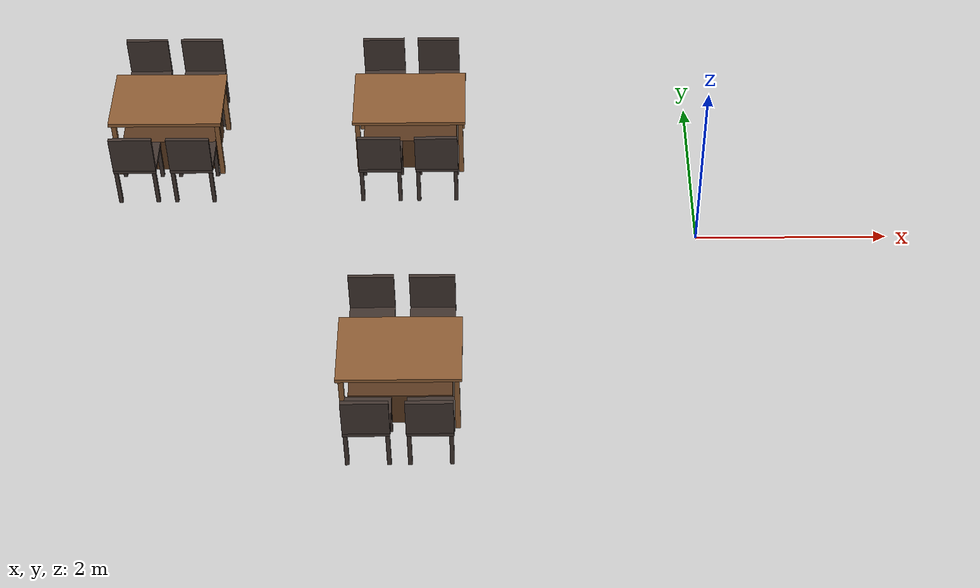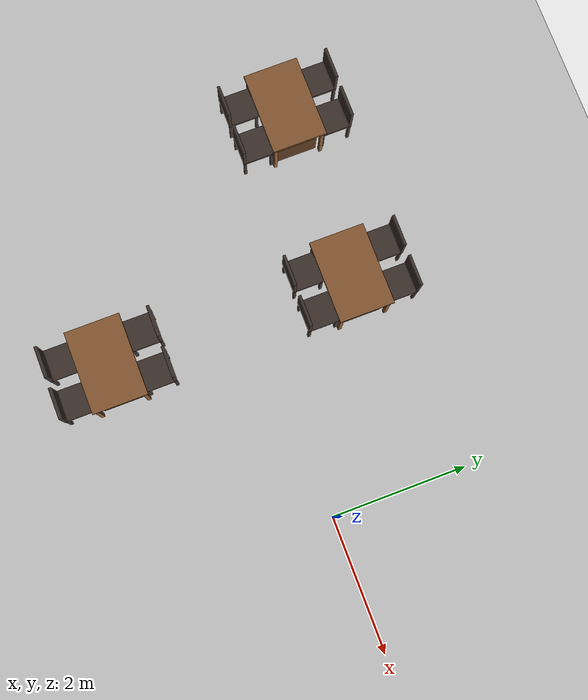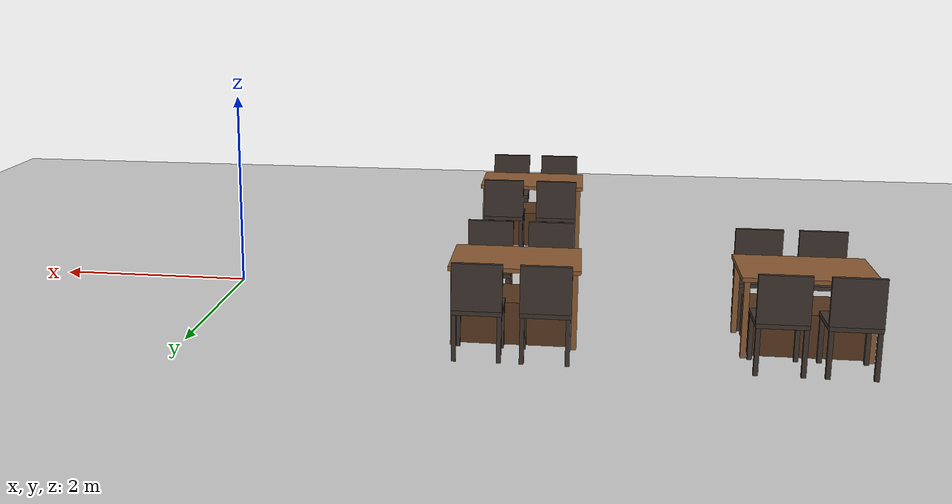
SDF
<sdf version="1.6">
 <world name="restaurant">
  <model name="ground_plane">
   <static>1</static>
   <link name="link">
    <collision name="collision">
     <geometry><plane><normal>0 0 1</normal><size>100 100</size></plane></geometry>
     <surface><friction><ode><mu>100</mu><mu2>50</mu2></ode></friction></surface>
    </collision>
    <visual name="visual">
     <cast_shadows>0</cast_shadows>
     <geometry><plane><normal>0 0 1</normal><size>100 100</size></plane></geometry>
     <material>
      <script><uri>file://media/materials/scripts/gazebo.material</uri><name>Gazebo/Grey</name></script>
     </material>
    </visual>
   </link>
  </model>
  <model name="table_1">
   <static>true</static>
   <pose>-5.6360 1.4091 0 0 0 0</pose>
   <link name="link">
    <collision name="base_collision">
     <pose>0.0000 0.0000 0.2000 0 0 0</pose>
     <geometry><box><size>1.0000 0.6000 0.4000</size></box></geometry>
    </collision>
    <visual name="base_visual">
     <pose>0.0000 0.0000 0.2000 0 0 0</pose>
     <geometry><box><size>1.0000 0.6000 0.4000</size></box></geometry>
     <material>
      <ambient>0.35 0.22 0.12 1</ambient>
      <diffuse>0.35 0.22 0.12 1</diffuse>
      <specular>0.05 0.05 0.05 1</specular>
     </material>
    </visual>
    <collision name="top_collision">
     <pose>0.0000 0.0000 0.7300 0 0 0</pose>
     <geometry><box><size>1.2000 0.8000 0.0400</size></box></geometry>
    </collision>
    <visual name="top_visual">
     <pose>0.0000 0.0000 0.7300 0 0 0</pose>
     <geometry><box><size>1.2000 0.8000 0.0400</size></box></geometry>
     <material>
      <ambient>0.55 0.36 0.2 1</ambient>
      <diffuse>0.55 0.36 0.2 1</diffuse>
      <specular>0.05 0.05 0.05 1</specular>
     </material>
    </visual>
    <collision name="leg0_collision">
     <pose>0.5500 0.3500 0.3550 0 0 0</pose>
     <geometry><box><size>0.0500 0.0500 0.7100</size></box></geometry>
    </collision>
    <visual name="leg0_visual">
     <pose>0.5500 0.3500 0.3550 0 0 0</pose>
     <geometry><box><size>0.0500 0.0500 0.7100</size></box></geometry>
     <material>
      <ambient>0.55 0.36 0.2 1</ambient>
      <diffuse>0.55 0.36 0.2 1</diffuse>
      <specular>0.05 0.05 0.05 1</specular>
     </material>
    </visual>
    <collision name="leg1_collision">
     <pose>0.5500 -0.3500 0.3550 0 0 0</pose>
     <geometry><box><size>0.0500 0.0500 0.7100</size></box></geometry>
    </collision>
    <visual name="leg1_visual">
     <pose>0.5500 -0.3500 0.3550 0 0 0</pose>
     <geometry><box><size>0.0500 0.0500 0.7100</size></box></geometry>
     <material>
      <ambient>0.55 0.36 0.2 1</ambient>
      <diffuse>0.55 0.36 0.2 1</diffuse>
      <specular>0.05 0.05 0.05 1</specular>
     </material>
    </visual>
    <collision name="leg2_collision">
     <pose>-0.5500 0.3500 0.3550 0 0 0</pose>
     <geometry><box><size>0.0500 0.0500 0.7100</size></box></geometry>
    </collision>
    <visual name="leg2_visual">
     <pose>-0.5500 0.3500 0.3550 0 0 0</pose>
     <geometry><box><size>0.0500 0.0500 0.7100</size></box></geometry>
     <material>
      <ambient>0.55 0.36 0.2 1</ambient>
      <diffuse>0.55 0.36 0.2 1</diffuse>
      <specular>0.05 0.05 0.05 1</specular>
     </material>
    </visual>
    <collision name="leg3_collision">
     <pose>-0.5500 -0.3500 0.3550 0 0 0</pose>
     <geometry><box><size>0.0500 0.0500 0.7100</size></box></geometry>
    </collision>
    <visual name="leg3_visual">
     <pose>-0.5500 -0.3500 0.3550 0 0 0</pose>
     <geometry><box><size>0.0500 0.0500 0.7100</size></box></geometry>
     <material>
      <ambient>0.55 0.36 0.2 1</ambient>
      <diffuse>0.55 0.36 0.2 1</diffuse>
      <specular>0.05 0.05 0.05 1</specular>
     </material>
    </visual>
    <collision name="chair0_seat_collision">
     <pose>-0.3000 0.6000 0.4500 0 0 0</pose>
     <geometry><box><size>0.4500 0.4500 0.0400</size></box></geometry>
    </collision>
    <visual name="chair0_seat_visual">
     <pose>-0.3000 0.6000 0.4500 0 0 0</pose>
     <geometry><box><size>0.4500 0.4500 0.0400</size></box></geometry>
     <material>
      <ambient>0.25 0.2 0.18 1</ambient>
      <diffuse>0.25 0.2 0.18 1</diffuse>
      <specular>0.05 0.05 0.05 1</specular>
     </material>
    </visual>
    <collision name="chair0_leg0_collision">
     <pose>-0.1000 0.8000 0.2150 0 0 0</pose>
     <geometry><box><size>0.0400 0.0400 0.4300</size></box></geometry>
    </collision>
    <visual name="chair0_leg0_visual">
     <pose>-0.1000 0.8000 0.2150 0 0 0</pose>
     <geometry><box><size>0.0400 0.0400 0.4300</size></box></geometry>
     <material>
      <ambient>0.25 0.2 0.18 1</ambient>
      <diffuse>0.25 0.2 0.18 1</diffuse>
      <specular>0.05 0.05 0.05 1</specular>
     </material>
    </visual>
    <collision name="chair0_leg1_collision">
     <pose>-0.1000 0.4000 0.2150 0 0 0</pose>
     <geometry><box><size>0.0400 0.0400 0.4300</size></box></geometry>
    </collision>
    <visual name="chair0_leg1_visual">
     <pose>-0.1000 0.4000 0.2150 0 0 0</pose>
     <geometry><box><size>0.0400 0.0400 0.4300</size></box></geometry>
     <material>
      <ambient>0.25 0.2 0.18 1</ambient>
      <diffuse>0.25 0.2 0.18 1</diffuse>
      <specular>0.05 0.05 0.05 1</specular>
     </material>
    </visual>
    <collision name="chair0_leg2_collision">
     <pose>-0.5000 0.8000 0.2150 0 0 0</pose>
     <geometry><box><size>0.0400 0.0400 0.4300</size></box></geometry>
    </collision>
    <visual name="chair0_leg2_visual">
     <pose>-0.5000 0.8000 0.2150 0 0 0</pose>
     <geometry><box><size>0.0400 0.0400 0.4300</size></box></geometry>
     <material>
      <ambient>0.25 0.2 0.18 1</ambient>
      <diffuse>0.25 0.2 0.18 1</diffuse>
      <specular>0.05 0.05 0.05 1</specular>
     </material>
    </visual>
    <collision name="chair0_leg3_collision">
     <pose>-0.5000 0.4000 0.2150 0 0 0</pose>
     <geometry><box><size>0.0400 0.0400 0.4300</size></box></geometry>
    </collision>
    <visual name="chair0_leg3_visual">
     <pose>-0.5000 0.4000 0.2150 0 0 0</pose>
     <geometry><box><size>0.0400 0.0400 0.4300</size></box></geometry>
     <material>
      <ambient>0.25 0.2 0.18 1</ambient>
      <diffuse>0.25 0.2 0.18 1</diffuse>
      <specular>0.05 0.05 0.05 1</specular>
     </material>
    </visual>
    <collision name="chair0_back_collision">
     <pose>-0.3000 0.8050 0.6850 0 0 0</pose>
     <geometry><box><size>0.4500 0.0400 0.4300</size></box></geometry>
    </collision>
    <visual name="chair0_back_visual">
     <pose>-0.3000 0.8050 0.6850 0 0 0</pose>
     <geometry><box><size>0.4500 0.0400 0.4300</size></box></geometry>
     <material>
      <ambient>0.25 0.2 0.18 1</ambient>
      <diffuse>0.25 0.2 0.18 1</diffuse>
      <specular>0.05 0.05 0.05 1</specular>
     </material>
    </visual>
    <collision name="chair1_seat_collision">
     <pose>-0.3000 -0.6000 0.4500 0 0 0</pose>
     <geometry><box><size>0.4500 0.4500 0.0400</size></box></geometry>
    </collision>
    <visual name="chair1_seat_visual">
     <pose>-0.3000 -0.6000 0.4500 0 0 0</pose>
     <geometry><box><size>0.4500 0.4500 0.0400</size></box></geometry>
     <material>
      <ambient>0.25 0.2 0.18 1</ambient>
      <diffuse>0.25 0.2 0.18 1</diffuse>
      <specular>0.05 0.05 0.05 1</specular>
     </material>
    </visual>
    <collision name="chair1_leg0_collision">
     <pose>-0.1000 -0.4000 0.2150 0 0 0</pose>
     <geometry><box><size>0.0400 0.0400 0.4300</size></box></geometry>
    </collision>
    <visual name="chair1_leg0_visual">
     <pose>-0.1000 -0.4000 0.2150 0 0 0</pose>
     <geometry><box><size>0.0400 0.0400 0.4300</size></box></geometry>
     <material>
      <ambient>0.25 0.2 0.18 1</ambient>
      <diffuse>0.25 0.2 0.18 1</diffuse>
      <specular>0.05 0.05 0.05 1</specular>
     </material>
    </visual>
    <collision name="chair1_leg1_collision">
     <pose>-0.1000 -0.8000 0.2150 0 0 0</pose>
     <geometry><box><size>0.0400 0.0400 0.4300</size></box></geometry>
    </collision>
    <visual name="chair1_leg1_visual">
     <pose>-0.1000 -0.8000 0.2150 0 0 0</pose>
     <geometry><box><size>0.0400 0.0400 0.4300</size></box></geometry>
     <material>
      <ambient>0.25 0.2 0.18 1</ambient>
      <diffuse>0.25 0.2 0.18 1</diffuse>
      <specular>0.05 0.05 0.05 1</specular>
     </material>
    </visual>
    <collision name="chair1_leg2_collision">
     <pose>-0.5000 -0.4000 0.2150 0 0 0</pose>
     <geometry><box><size>0.0400 0.0400 0.4300</size></box></geometry>
    </collision>
    <visual name="chair1_leg2_visual">
     <pose>-0.5000 -0.4000 0.2150 0 0 0</pose>
     <geometry><box><size>0.0400 0.0400 0.4300</size></box></geometry>
     <material>
      <ambient>0.25 0.2 0.18 1</ambient>
      <diffuse>0.25 0.2 0.18 1</diffuse>
      <specular>0.05 0.05 0.05 1</specular>
     </material>
    </visual>
    <collision name="chair1_leg3_collision">
     <pose>-0.5000 -0.8000 0.2150 0 0 0</pose>
     <geometry><box><size>0.0400 0.0400 0.4300</size></box></geometry>
    </collision>
    <visual name="chair1_leg3_visual">
     <pose>-0.5000 -0.8000 0.2150 0 0 0</pose>
     <geometry><box><size>0.0400 0.0400 0.4300</size></box></geometry>
     <material>
      <ambient>0.25 0.2 0.18 1</ambient>
      <diffuse>0.25 0.2 0.18 1</diffuse>
      <specular>0.05 0.05 0.05 1</specular>
     </material>
    </visual>
    <collision name="chair1_back_collision">
     <pose>-0.3000 -0.8050 0.6850 0 0 0</pose>
     <geometry><box><size>0.4500 0.0400 0.4300</size></box></geometry>
    </collision>
    <visual name="chair1_back_visual">
     <pose>-0.3000 -0.8050 0.6850 0 0 0</pose>
     <geometry><box><size>0.4500 0.0400 0.4300</size></box></geometry>
     <material>
      <ambient>0.25 0.2 0.18 1</ambient>
      <diffuse>0.25 0.2 0.18 1</diffuse>
      <specular>0.05 0.05 0.05 1</specular>
     </material>
    </visual>
    <collision name="chair2_seat_collision">
     <pose>0.3000 0.6000 0.4500 0 0 0</pose>
     <geometry><box><size>0.4500 0.4500 0.0400</size></box></geometry>
    </collision>
    <visual name="chair2_seat_visual">
     <pose>0.3000 0.6000 0.4500 0 0 0</pose>
     <geometry><box><size>0.4500 0.4500 0.0400</size></box></geometry>
     <material>
      <ambient>0.25 0.2 0.18 1</ambient>
      <diffuse>0.25 0.2 0.18 1</diffuse>
      <specular>0.05 0.05 0.05 1</specular>
     </material>
    </visual>
    <collision name="chair2_leg0_collision">
     <pose>0.5000 0.8000 0.2150 0 0 0</pose>
     <geometry><box><size>0.0400 0.0400 0.4300</size></box></geometry>
    </collision>
    <visual name="chair2_leg0_visual">
     <pose>0.5000 0.8000 0.2150 0 0 0</pose>
     <geometry><box><size>0.0400 0.0400 0.4300</size></box></geometry>
     <material>
      <ambient>0.25 0.2 0.18 1</ambient>
      <diffuse>0.25 0.2 0.18 1</diffuse>
      <specular>0.05 0.05 0.05 1</specular>
     </material>
    </visual>
    <collision name="chair2_leg1_collision">
     <pose>0.5000 0.4000 0.2150 0 0 0</pose>
     <geometry><box><size>0.0400 0.0400 0.4300</size></box></geometry>
    </collision>
    <visual name="chair2_leg1_visual">
     <pose>0.5000 0.4000 0.2150 0 0 0</pose>
     <geometry><box><size>0.0400 0.0400 0.4300</size></box></geometry>
     <material>
      <ambient>0.25 0.2 0.18 1</ambient>
      <diffuse>0.25 0.2 0.18 1</diffuse>
      <specular>0.05 0.05 0.05 1</specular>
     </material>
    </visual>
    <collision name="chair2_leg2_collision">
     <pose>0.1000 0.8000 0.2150 0 0 0</pose>
     <geometry><box><size>0.0400 0.0400 0.4300</size></box></geometry>
    </collision>
    <visual name="chair2_leg2_visual">
     <pose>0.1000 0.8000 0.2150 0 0 0</pose>
     <geometry><box><size>0.0400 0.0400 0.4300</size></box></geometry>
     <material>
      <ambient>0.25 0.2 0.18 1</ambient>
      <diffuse>0.25 0.2 0.18 1</diffuse>
      <specular>0.05 0.05 0.05 1</specular>
     </material>
    </visual>
    <collision name="chair2_leg3_collision">
     <pose>0.1000 0.4000 0.2150 0 0 0</pose>
     <geometry><box><size>0.0400 0.0400 0.4300</size></box></geometry>
    </collision>
    <visual name="chair2_leg3_visual">
     <pose>0.1000 0.4000 0.2150 0 0 0</pose>
     <geometry><box><size>0.0400 0.0400 0.4300</size></box></geometry>
     <material>
      <ambient>0.25 0.2 0.18 1</ambient>
      <diffuse>0.25 0.2 0.18 1</diffuse>
      <specular>0.05 0.05 0.05 1</specular>
     </material>
    </visual>
    <collision name="chair2_back_collision">
     <pose>0.3000 0.8050 0.6850 0 0 0</pose>
     <geometry><box><size>0.4500 0.0400 0.4300</size></box></geometry>
    </collision>
    <visual name="chair2_back_visual">
     <pose>0.3000 0.8050 0.6850 0 0 0</pose>
     <geometry><box><size>0.4500 0.0400 0.4300</size></box></geometry>
     <material>
      <ambient>0.25 0.2 0.18 1</ambient>
      <diffuse>0.25 0.2 0.18 1</diffuse>
      <specular>0.05 0.05 0.05 1</specular>
     </material>
    </visual>
    <collision name="chair3_seat_collision">
     <pose>0.3000 -0.6000 0.4500 0 0 0</pose>
     <geometry><box><size>0.4500 0.4500 0.0400</size></box></geometry>
    </collision>
    <visual name="chair3_seat_visual">
     <pose>0.3000 -0.6000 0.4500 0 0 0</pose>
     <geometry><box><size>0.4500 0.4500 0.0400</size></box></geometry>
     <material>
      <ambient>0.25 0.2 0.18 1</ambient>
      <diffuse>0.25 0.2 0.18 1</diffuse>
      <specular>0.05 0.05 0.05 1</specular>
     </material>
    </visual>
    <collision name="chair3_leg0_collision">
     <pose>0.5000 -0.4000 0.2150 0 0 0</pose>
     <geometry><box><size>0.0400 0.0400 0.4300</size></box></geometry>
    </collision>
    <visual name="chair3_leg0_visual">
     <pose>0.5000 -0.4000 0.2150 0 0 0</pose>
     <geometry><box><size>0.0400 0.0400 0.4300</size></box></geometry>
     <material>
      <ambient>0.25 0.2 0.18 1</ambient>
      <diffuse>0.25 0.2 0.18 1</diffuse>
      <specular>0.05 0.05 0.05 1</specular>
     </material>
    </visual>
    <collision name="chair3_leg1_collision">
     <pose>0.5000 -0.8000 0.2150 0 0 0</pose>
     <geometry><box><size>0.0400 0.0400 0.4300</size></box></geometry>
    </collision>
    <visual name="chair3_leg1_visual">
     <pose>0.5000 -0.8000 0.2150 0 0 0</pose>
     <geometry><box><size>0.0400 0.0400 0.4300</size></box></geometry>
     <material>
      <ambient>0.25 0.2 0.18 1</ambient>
      <diffuse>0.25 0.2 0.18 1</diffuse>
      <specular>0.05 0.05 0.05 1</specular>
     </material>
    </visual>
    <collision name="chair3_leg2_collision">
     <pose>0.1000 -0.4000 0.2150 0 0 0</pose>
     <geometry><box><size>0.0400 0.0400 0.4300</size></box></geometry>
    </collision>
    <visual name="chair3_leg2_visual">
     <pose>0.1000 -0.4000 0.2150 0 0 0</pose>
     <geometry><box><size>0.0400 0.0400 0.4300</size></box></geometry>
     <material>
      <ambient>0.25 0.2 0.18 1</ambient>
      <diffuse>0.25 0.2 0.18 1</diffuse>
      <specular>0.05 0.05 0.05 1</specular>
     </material>
    </visual>
    <collision name="chair3_leg3_collision">
     <pose>0.1000 -0.8000 0.2150 0 0 0</pose>
     <geometry><box><size>0.0400 0.0400 0.4300</size></box></geometry>
    </collision>
    <visual name="chair3_leg3_visual">
     <pose>0.1000 -0.8000 0.2150 0 0 0</pose>
     <geometry><box><size>0.0400 0.0400 0.4300</size></box></geometry>
     <material>
      <ambient>0.25 0.2 0.18 1</ambient>
      <diffuse>0.25 0.2 0.18 1</diffuse>
      <specular>0.05 0.05 0.05 1</specular>
     </material>
    </visual>
    <collision name="chair3_back_collision">
     <pose>0.3000 -0.8050 0.6850 0 0 0</pose>
     <geometry><box><size>0.4500 0.0400 0.4300</size></box></geometry>
    </collision>
    <visual name="chair3_back_visual">
     <pose>0.3000 -0.8050 0.6850 0 0 0</pose>
     <geometry><box><size>0.4500 0.0400 0.4300</size></box></geometry>
     <material>
      <ambient>0.25 0.2 0.18 1</ambient>
      <diffuse>0.25 0.2 0.18 1</diffuse>
      <specular>0.05 0.05 0.05 1</specular>
     </material>
    </visual>
   </link>
  </model>
  <model name="table_2">
   <static>true</static>
   <pose>-3.0360 1.4091 0 0 0 0</pose>
   <link name="link">
    <collision name="base_collision">
     <pose>0.0000 0.0000 0.2000 0 0 0</pose>
     <geometry><box><size>1.0000 0.6000 0.4000</size></box></geometry>
    </collision>
    <visual name="base_visual">
     <pose>0.0000 0.0000 0.2000 0 0 0</pose>
     <geometry><box><size>1.0000 0.6000 0.4000</size></box></geometry>
     <material>
      <ambient>0.35 0.22 0.12 1</ambient>
      <diffuse>0.35 0.22 0.12 1</diffuse>
      <specular>0.05 0.05 0.05 1</specular>
     </material>
    </visual>
    <collision name="top_collision">
     <pose>0.0000 0.0000 0.7300 0 0 0</pose>
     <geometry><box><size>1.2000 0.8000 0.0400</size></box></geometry>
    </collision>
    <visual name="top_visual">
     <pose>0.0000 0.0000 0.7300 0 0 0</pose>
     <geometry><box><size>1.2000 0.8000 0.0400</size></box></geometry>
     <material>
      <ambient>0.55 0.36 0.2 1</ambient>
      <diffuse>0.55 0.36 0.2 1</diffuse>
      <specular>0.05 0.05 0.05 1</specular>
     </material>
    </visual>
    <collision name="leg0_collision">
     <pose>0.5500 0.3500 0.3550 0 0 0</pose>
     <geometry><box><size>0.0500 0.0500 0.7100</size></box></geometry>
    </collision>
    <visual name="leg0_visual">
     <pose>0.5500 0.3500 0.3550 0 0 0</pose>
     <geometry><box><size>0.0500 0.0500 0.7100</size></box></geometry>
     <material>
      <ambient>0.55 0.36 0.2 1</ambient>
      <diffuse>0.55 0.36 0.2 1</diffuse>
      <specular>0.05 0.05 0.05 1</specular>
     </material>
    </visual>
    <collision name="leg1_collision">
     <pose>0.5500 -0.3500 0.3550 0 0 0</pose>
     <geometry><box><size>0.0500 0.0500 0.7100</size></box></geometry>
    </collision>
    <visual name="leg1_visual">
     <pose>0.5500 -0.3500 0.3550 0 0 0</pose>
     <geometry><box><size>0.0500 0.0500 0.7100</size></box></geometry>
     <material>
      <ambient>0.55 0.36 0.2 1</ambient>
      <diffuse>0.55 0.36 0.2 1</diffuse>
      <specular>0.05 0.05 0.05 1</specular>
     </material>
    </visual>
    <collision name="leg2_collision">
     <pose>-0.5500 0.3500 0.3550 0 0 0</pose>
     <geometry><box><size>0.0500 0.0500 0.7100</size></box></geometry>
    </collision>
    <visual name="leg2_visual">
     <pose>-0.5500 0.3500 0.3550 0 0 0</pose>
     <geometry><box><size>0.0500 0.0500 0.7100</size></box></geometry>
     <material>
      <ambient>0.55 0.36 0.2 1</ambient>
      <diffuse>0.55 0.36 0.2 1</diffuse>
      <specular>0.05 0.05 0.05 1</specular>
     </material>
    </visual>
    <collision name="leg3_collision">
     <pose>-0.5500 -0.3500 0.3550 0 0 0</pose>
     <geometry><box><size>0.0500 0.0500 0.7100</size></box></geometry>
    </collision>
    <visual name="leg3_visual">
     <pose>-0.5500 -0.3500 0.3550 0 0 0</pose>
     <geometry><box><size>0.0500 0.0500 0.7100</size></box></geometry>
     <material>
      <ambient>0.55 0.36 0.2 1</ambient>
      <diffuse>0.55 0.36 0.2 1</diffuse>
      <specular>0.05 0.05 0.05 1</specular>
     </material>
    </visual>
    <collision name="chair0_seat_collision">
     <pose>-0.3000 0.6000 0.4500 0 0 0</pose>
     <geometry><box><size>0.4500 0.4500 0.0400</size></box></geometry>
    </collision>
    <visual name="chair0_seat_visual">
     <pose>-0.3000 0.6000 0.4500 0 0 0</pose>
     <geometry><box><size>0.4500 0.4500 0.0400</size></box></geometry>
     <material>
      <ambient>0.25 0.2 0.18 1</ambient>
      <diffuse>0.25 0.2 0.18 1</diffuse>
      <specular>0.05 0.05 0.05 1</specular>
     </material>
    </visual>
    <collision name="chair0_leg0_collision">
     <pose>-0.1000 0.8000 0.2150 0 0 0</pose>
     <geometry><box><size>0.0400 0.0400 0.4300</size></box></geometry>
    </collision>
    <visual name="chair0_leg0_visual">
     <pose>-0.1000 0.8000 0.2150 0 0 0</pose>
     <geometry><box><size>0.0400 0.0400 0.4300</size></box></geometry>
     <material>
      <ambient>0.25 0.2 0.18 1</ambient>
      <diffuse>0.25 0.2 0.18 1</diffuse>
      <specular>0.05 0.05 0.05 1</specular>
     </material>
    </visual>
    <collision name="chair0_leg1_collision">
     <pose>-0.1000 0.4000 0.2150 0 0 0</pose>
     <geometry><box><size>0.0400 0.0400 0.4300</size></box></geometry>
    </collision>
    <visual name="chair0_leg1_visual">
     <pose>-0.1000 0.4000 0.2150 0 0 0</pose>
     <geometry><box><size>0.0400 0.0400 0.4300</size></box></geometry>
     <material>
      <ambient>0.25 0.2 0.18 1</ambient>
      <diffuse>0.25 0.2 0.18 1</diffuse>
      <specular>0.05 0.05 0.05 1</specular>
     </material>
    </visual>
    <collision name="chair0_leg2_collision">
     <pose>-0.5000 0.8000 0.2150 0 0 0</pose>
     <geometry><box><size>0.0400 0.0400 0.4300</size></box></geometry>
    </collision>
    <visual name="chair0_leg2_visual">
     <pose>-0.5000 0.8000 0.2150 0 0 0</pose>
     <geometry><box><size>0.0400 0.0400 0.4300</size></box></geometry>
     <material>
      <ambient>0.25 0.2 0.18 1</ambient>
      <diffuse>0.25 0.2 0.18 1</diffuse>
      <specular>0.05 0.05 0.05 1</specular>
     </material>
    </visual>
    <collision name="chair0_leg3_collision">
     <pose>-0.5000 0.4000 0.2150 0 0 0</pose>
     <geometry><box><size>0.0400 0.0400 0.4300</size></box></geometry>
    </collision>
    <visual name="chair0_leg3_visual">
     <pose>-0.5000 0.4000 0.2150 0 0 0</pose>
     <geometry><box><size>0.0400 0.0400 0.4300</size></box></geometry>
     <material>
      <ambient>0.25 0.2 0.18 1</ambient>
      <diffuse>0.25 0.2 0.18 1</diffuse>
      <specular>0.05 0.05 0.05 1</specular>
     </material>
    </visual>
    <collision name="chair0_back_collision">
     <pose>-0.3000 0.8050 0.6850 0 0 0</pose>
     <geometry><box><size>0.4500 0.0400 0.4300</size></box></geometry>
    </collision>
    <visual name="chair0_back_visual">
     <pose>-0.3000 0.8050 0.6850 0 0 0</pose>
     <geometry><box><size>0.4500 0.0400 0.4300</size></box></geometry>
     <material>
      <ambient>0.25 0.2 0.18 1</ambient>
      <diffuse>0.25 0.2 0.18 1</diffuse>
      <specular>0.05 0.05 0.05 1</specular>
     </material>
    </visual>
    <collision name="chair1_seat_collision">
     <pose>-0.3000 -0.6000 0.4500 0 0 0</pose>
     <geometry><box><size>0.4500 0.4500 0.0400</size></box></geometry>
    </collision>
    <visual name="chair1_seat_visual">
     <pose>-0.3000 -0.6000 0.4500 0 0 0</pose>
     <geometry><box><size>0.4500 0.4500 0.0400</size></box></geometry>
     <material>
      <ambient>0.25 0.2 0.18 1</ambient>
      <diffuse>0.25 0.2 0.18 1</diffuse>
      <specular>0.05 0.05 0.05 1</specular>
     </material>
    </visual>
    <collision name="chair1_leg0_collision">
     <pose>-0.1000 -0.4000 0.2150 0 0 0</pose>
     <geometry><box><size>0.0400 0.0400 0.4300</size></box></geometry>
    </collision>
    <visual name="chair1_leg0_visual">
     <pose>-0.1000 -0.4000 0.2150 0 0 0</pose>
     <geometry><box><size>0.0400 0.0400 0.4300</size></box></geometry>
     <material>
      <ambient>0.25 0.2 0.18 1</ambient>
      <diffuse>0.25 0.2 0.18 1</diffuse>
      <specular>0.05 0.05 0.05 1</specular>
     </material>
    </visual>
    <collision name="chair1_leg1_collision">
     <pose>-0.1000 -0.8000 0.2150 0 0 0</pose>
     <geometry><box><size>0.0400 0.0400 0.4300</size></box></geometry>
    </collision>
    <visual name="chair1_leg1_visual">
     <pose>-0.1000 -0.8000 0.2150 0 0 0</pose>
     <geometry><box><size>0.0400 0.0400 0.4300</size></box></geometry>
     <material>
      <ambient>0.25 0.2 0.18 1</ambient>
      <diffuse>0.25 0.2 0.18 1</diffuse>
      <specular>0.05 0.05 0.05 1</specular>
     </material>
    </visual>
    <collision name="chair1_leg2_collision">
     <pose>-0.5000 -0.4000 0.2150 0 0 0</pose>
     <geometry><box><size>0.0400 0.0400 0.4300</size></box></geometry>
    </collision>
    <visual name="chair1_leg2_visual">
     <pose>-0.5000 -0.4000 0.2150 0 0 0</pose>
     <geometry><box><size>0.0400 0.0400 0.4300</size></box></geometry>
     <material>
      <ambient>0.25 0.2 0.18 1</ambient>
      <diffuse>0.25 0.2 0.18 1</diffuse>
      <specular>0.05 0.05 0.05 1</specular>
     </material>
    </visual>
    <collision name="chair1_leg3_collision">
     <pose>-0.5000 -0.8000 0.2150 0 0 0</pose>
     <geometry><box><size>0.0400 0.0400 0.4300</size></box></geometry>
    </collision>
    <visual name="chair1_leg3_visual">
     <pose>-0.5000 -0.8000 0.2150 0 0 0</pose>
     <geometry><box><size>0.0400 0.0400 0.4300</size></box></geometry>
     <material>
      <ambient>0.25 0.2 0.18 1</ambient>
      <diffuse>0.25 0.2 0.18 1</diffuse>
      <specular>0.05 0.05 0.05 1</specular>
     </material>
    </visual>
    <collision name="chair1_back_collision">
     <pose>-0.3000 -0.8050 0.6850 0 0 0</pose>
     <geometry><box><size>0.4500 0.0400 0.4300</size></box></geometry>
    </collision>
    <visual name="chair1_back_visual">
     <pose>-0.3000 -0.8050 0.6850 0 0 0</pose>
     <geometry><box><size>0.4500 0.0400 0.4300</size></box></geometry>
     <material>
      <ambient>0.25 0.2 0.18 1</ambient>
      <diffuse>0.25 0.2 0.18 1</diffuse>
      <specular>0.05 0.05 0.05 1</specular>
     </material>
    </visual>
    <collision name="chair2_seat_collision">
     <pose>0.3000 0.6000 0.4500 0 0 0</pose>
     <geometry><box><size>0.4500 0.4500 0.0400</size></box></geometry>
    </collision>
    <visual name="chair2_seat_visual">
     <pose>0.3000 0.6000 0.4500 0 0 0</pose>
     <geometry><box><size>0.4500 0.4500 0.0400</size></box></geometry>
     <material>
      <ambient>0.25 0.2 0.18 1</ambient>
      <diffuse>0.25 0.2 0.18 1</diffuse>
      <specular>0.05 0.05 0.05 1</specular>
     </material>
    </visual>
    <collision name="chair2_leg0_collision">
     <pose>0.5000 0.8000 0.2150 0 0 0</pose>
     <geometry><box><size>0.0400 0.0400 0.4300</size></box></geometry>
    </collision>
    <visual name="chair2_leg0_visual">
     <pose>0.5000 0.8000 0.2150 0 0 0</pose>
     <geometry><box><size>0.0400 0.0400 0.4300</size></box></geometry>
     <material>
      <ambient>0.25 0.2 0.18 1</ambient>
      <diffuse>0.25 0.2 0.18 1</diffuse>
      <specular>0.05 0.05 0.05 1</specular>
     </material>
    </visual>
    <collision name="chair2_leg1_collision">
     <pose>0.5000 0.4000 0.2150 0 0 0</pose>
     <geometry><box><size>0.0400 0.0400 0.4300</size></box></geometry>
    </collision>
    <visual name="chair2_leg1_visual">
     <pose>0.5000 0.4000 0.2150 0 0 0</pose>
     <geometry><box><size>0.0400 0.0400 0.4300</size></box></geometry>
     <material>
      <ambient>0.25 0.2 0.18 1</ambient>
      <diffuse>0.25 0.2 0.18 1</diffuse>
      <specular>0.05 0.05 0.05 1</specular>
     </material>
    </visual>
    <collision name="chair2_leg2_collision">
     <pose>0.1000 0.8000 0.2150 0 0 0</pose>
     <geometry><box><size>0.0400 0.0400 0.4300</size></box></geometry>
    </collision>
    <visual name="chair2_leg2_visual">
     <pose>0.1000 0.8000 0.2150 0 0 0</pose>
     <geometry><box><size>0.0400 0.0400 0.4300</size></box></geometry>
     <material>
      <ambient>0.25 0.2 0.18 1</ambient>
      <diffuse>0.25 0.2 0.18 1</diffuse>
      <specular>0.05 0.05 0.05 1</specular>
     </material>
    </visual>
    <collision name="chair2_leg3_collision">
     <pose>0.1000 0.4000 0.2150 0 0 0</pose>
     <geometry><box><size>0.0400 0.0400 0.4300</size></box></geometry>
    </collision>
    <visual name="chair2_leg3_visual">
     <pose>0.1000 0.4000 0.2150 0 0 0</pose>
     <geometry><box><size>0.0400 0.0400 0.4300</size></box></geometry>
     <material>
      <ambient>0.25 0.2 0.18 1</ambient>
      <diffuse>0.25 0.2 0.18 1</diffuse>
      <specular>0.05 0.05 0.05 1</specular>
     </material>
    </visual>
    <collision name="chair2_back_collision">
     <pose>0.3000 0.8050 0.6850 0 0 0</pose>
     <geometry><box><size>0.4500 0.0400 0.4300</size></box></geometry>
    </collision>
    <visual name="chair2_back_visual">
     <pose>0.3000 0.8050 0.6850 0 0 0</pose>
     <geometry><box><size>0.4500 0.0400 0.4300</size></box></geometry>
     <material>
      <ambient>0.25 0.2 0.18 1</ambient>
      <diffuse>0.25 0.2 0.18 1</diffuse>
      <specular>0.05 0.05 0.05 1</specular>
     </material>
    </visual>
    <collision name="chair3_seat_collision">
     <pose>0.3000 -0.6000 0.4500 0 0 0</pose>
     <geometry><box><size>0.4500 0.4500 0.0400</size></box></geometry>
    </collision>
    <visual name="chair3_seat_visual">
     <pose>0.3000 -0.6000 0.4500 0 0 0</pose>
     <geometry><box><size>0.4500 0.4500 0.0400</size></box></geometry>
     <material>
      <ambient>0.25 0.2 0.18 1</ambient>
      <diffuse>0.25 0.2 0.18 1</diffuse>
      <specular>0.05 0.05 0.05 1</specular>
     </material>
    </visual>
    <collision name="chair3_leg0_collision">
     <pose>0.5000 -0.4000 0.2150 0 0 0</pose>
     <geometry><box><size>0.0400 0.0400 0.4300</size></box></geometry>
    </collision>
    <visual name="chair3_leg0_visual">
     <pose>0.5000 -0.4000 0.2150 0 0 0</pose>
     <geometry><box><size>0.0400 0.0400 0.4300</size></box></geometry>
     <material>
      <ambient>0.25 0.2 0.18 1</ambient>
      <diffuse>0.25 0.2 0.18 1</diffuse>
      <specular>0.05 0.05 0.05 1</specular>
     </material>
    </visual>
    <collision name="chair3_leg1_collision">
     <pose>0.5000 -0.8000 0.2150 0 0 0</pose>
     <geometry><box><size>0.0400 0.0400 0.4300</size></box></geometry>
    </collision>
    <visual name="chair3_leg1_visual">
     <pose>0.5000 -0.8000 0.2150 0 0 0</pose>
     <geometry><box><size>0.0400 0.0400 0.4300</size></box></geometry>
     <material>
      <ambient>0.25 0.2 0.18 1</ambient>
      <diffuse>0.25 0.2 0.18 1</diffuse>
      <specular>0.05 0.05 0.05 1</specular>
     </material>
    </visual>
    <collision name="chair3_leg2_collision">
     <pose>0.1000 -0.4000 0.2150 0 0 0</pose>
     <geometry><box><size>0.0400 0.0400 0.4300</size></box></geometry>
    </collision>
    <visual name="chair3_leg2_visual">
     <pose>0.1000 -0.4000 0.2150 0 0 0</pose>
     <geometry><box><size>0.0400 0.0400 0.4300</size></box></geometry>
     <material>
      <ambient>0.25 0.2 0.18 1</ambient>
      <diffuse>0.25 0.2 0.18 1</diffuse>
      <specular>0.05 0.05 0.05 1</specular>
     </material>
    </visual>
    <collision name="chair3_leg3_collision">
     <pose>0.1000 -0.8000 0.2150 0 0 0</pose>
     <geometry><box><size>0.0400 0.0400 0.4300</size></box></geometry>
    </collision>
    <visual name="chair3_leg3_visual">
     <pose>0.1000 -0.8000 0.2150 0 0 0</pose>
     <geometry><box><size>0.0400 0.0400 0.4300</size></box></geometry>
     <material>
      <ambient>0.25 0.2 0.18 1</ambient>
      <diffuse>0.25 0.2 0.18 1</diffuse>
      <specular>0.05 0.05 0.05 1</specular>
     </material>
    </visual>
    <collision name="chair3_back_collision">
     <pose>0.3000 -0.8050 0.6850 0 0 0</pose>
     <geometry><box><size>0.4500 0.0400 0.4300</size></box></geometry>
    </collision>
    <visual name="chair3_back_visual">
     <pose>0.3000 -0.8050 0.6850 0 0 0</pose>
     <geometry><box><size>0.4500 0.0400 0.4300</size></box></geometry>
     <material>
      <ambient>0.25 0.2 0.18 1</ambient>
      <diffuse>0.25 0.2 0.18 1</diffuse>
      <specular>0.05 0.05 0.05 1</specular>
     </material>
    </visual>
   </link>
  </model>
  <model name="table_8">
   <static>true</static>
   <pose>-3.0360 -2.1909 0 0 0 0</pose>
   <link name="link">
    <collision name="base_collision">
     <pose>0.0000 0.0000 0.2000 0 0 0</pose>
     <geometry><box><size>1.0000 0.6000 0.4000</size></box></geometry>
    </collision>
    <visual name="base_visual">
     <pose>0.0000 0.0000 0.2000 0 0 0</pose>
     <geometry><box><size>1.0000 0.6000 0.4000</size></box></geometry>
     <material>
      <ambient>0.35 0.22 0.12 1</ambient>
      <diffuse>0.35 0.22 0.12 1</diffuse>
      <specular>0.05 0.05 0.05 1</specular>
     </material>
    </visual>
    <collision name="top_collision">
     <pose>0.0000 0.0000 0.7300 0 0 0</pose>
     <geometry><box><size>1.2000 0.8000 0.0400</size></box></geometry>
    </collision>
    <visual name="top_visual">
     <pose>0.0000 0.0000 0.7300 0 0 0</pose>
     <geometry><box><size>1.2000 0.8000 0.0400</size></box></geometry>
     <material>
      <ambient>0.55 0.36 0.2 1</ambient>
      <diffuse>0.55 0.36 0.2 1</diffuse>
      <specular>0.05 0.05 0.05 1</specular>
     </material>
    </visual>
    <collision name="leg0_collision">
     <pose>0.5500 0.3500 0.3550 0 0 0</pose>
     <geometry><box><size>0.0500 0.0500 0.7100</size></box></geometry>
    </collision>
    <visual name="leg0_visual">
     <pose>0.5500 0.3500 0.3550 0 0 0</pose>
     <geometry><box><size>0.0500 0.0500 0.7100</size></box></geometry>
     <material>
      <ambient>0.55 0.36 0.2 1</ambient>
      <diffuse>0.55 0.36 0.2 1</diffuse>
      <specular>0.05 0.05 0.05 1</specular>
     </material>
    </visual>
    <collision name="leg1_collision">
     <pose>0.5500 -0.3500 0.3550 0 0 0</pose>
     <geometry><box><size>0.0500 0.0500 0.7100</size></box></geometry>
    </collision>
    <visual name="leg1_visual">
     <pose>0.5500 -0.3500 0.3550 0 0 0</pose>
     <geometry><box><size>0.0500 0.0500 0.7100</size></box></geometry>
     <material>
      <ambient>0.55 0.36 0.2 1</ambient>
      <diffuse>0.55 0.36 0.2 1</diffuse>
      <specular>0.05 0.05 0.05 1</specular>
     </material>
    </visual>
    <collision name="leg2_collision">
     <pose>-0.5500 0.3500 0.3550 0 0 0</pose>
     <geometry><box><size>0.0500 0.0500 0.7100</size></box></geometry>
    </collision>
    <visual name="leg2_visual">
     <pose>-0.5500 0.3500 0.3550 0 0 0</pose>
     <geometry><box><size>0.0500 0.0500 0.7100</size></box></geometry>
     <material>
      <ambient>0.55 0.36 0.2 1</ambient>
      <diffuse>0.55 0.36 0.2 1</diffuse>
      <specular>0.05 0.05 0.05 1</specular>
     </material>
    </visual>
    <collision name="leg3_collision">
     <pose>-0.5500 -0.3500 0.3550 0 0 0</pose>
     <geometry><box><size>0.0500 0.0500 0.7100</size></box></geometry>
    </collision>
    <visual name="leg3_visual">
     <pose>-0.5500 -0.3500 0.3550 0 0 0</pose>
     <geometry><box><size>0.0500 0.0500 0.7100</size></box></geometry>
     <material>
      <ambient>0.55 0.36 0.2 1</ambient>
      <diffuse>0.55 0.36 0.2 1</diffuse>
      <specular>0.05 0.05 0.05 1</specular>
     </material>
    </visual>
    <collision name="chair0_seat_collision">
     <pose>-0.3000 0.6000 0.4500 0 0 0</pose>
     <geometry><box><size>0.4500 0.4500 0.0400</size></box></geometry>
    </collision>
    <visual name="chair0_seat_visual">
     <pose>-0.3000 0.6000 0.4500 0 0 0</pose>
     <geometry><box><size>0.4500 0.4500 0.0400</size></box></geometry>
     <material>
      <ambient>0.25 0.2 0.18 1</ambient>
      <diffuse>0.25 0.2 0.18 1</diffuse>
      <specular>0.05 0.05 0.05 1</specular>
     </material>
    </visual>
    <collision name="chair0_leg0_collision">
     <pose>-0.1000 0.8000 0.2150 0 0 0</pose>
     <geometry><box><size>0.0400 0.0400 0.4300</size></box></geometry>
    </collision>
    <visual name="chair0_leg0_visual">
     <pose>-0.1000 0.8000 0.2150 0 0 0</pose>
     <geometry><box><size>0.0400 0.0400 0.4300</size></box></geometry>
     <material>
      <ambient>0.25 0.2 0.18 1</ambient>
      <diffuse>0.25 0.2 0.18 1</diffuse>
      <specular>0.05 0.05 0.05 1</specular>
     </material>
    </visual>
    <collision name="chair0_leg1_collision">
     <pose>-0.1000 0.4000 0.2150 0 0 0</pose>
     <geometry><box><size>0.0400 0.0400 0.4300</size></box></geometry>
    </collision>
    <visual name="chair0_leg1_visual">
     <pose>-0.1000 0.4000 0.2150 0 0 0</pose>
     <geometry><box><size>0.0400 0.0400 0.4300</size></box></geometry>
     <material>
      <ambient>0.25 0.2 0.18 1</ambient>
      <diffuse>0.25 0.2 0.18 1</diffuse>
      <specular>0.05 0.05 0.05 1</specular>
     </material>
    </visual>
    <collision name="chair0_leg2_collision">
     <pose>-0.5000 0.8000 0.2150 0 0 0</pose>
     <geometry><box><size>0.0400 0.0400 0.4300</size></box></geometry>
    </collision>
    <visual name="chair0_leg2_visual">
     <pose>-0.5000 0.8000 0.2150 0 0 0</pose>
     <geometry><box><size>0.0400 0.0400 0.4300</size></box></geometry>
     <material>
      <ambient>0.25 0.2 0.18 1</ambient>
      <diffuse>0.25 0.2 0.18 1</diffuse>
      <specular>0.05 0.05 0.05 1</specular>
     </material>
    </visual>
    <collision name="chair0_leg3_collision">
     <pose>-0.5000 0.4000 0.2150 0 0 0</pose>
     <geometry><box><size>0.0400 0.0400 0.4300</size></box></geometry>
    </collision>
    <visual name="chair0_leg3_visual">
     <pose>-0.5000 0.4000 0.2150 0 0 0</pose>
     <geometry><box><size>0.0400 0.0400 0.4300</size></box></geometry>
     <material>
      <ambient>0.25 0.2 0.18 1</ambient>
      <diffuse>0.25 0.2 0.18 1</diffuse>
      <specular>0.05 0.05 0.05 1</specular>
     </material>
    </visual>
    <collision name="chair0_back_collision">
     <pose>-0.3000 0.8050 0.6850 0 0 0</pose>
     <geometry><box><size>0.4500 0.0400 0.4300</size></box></geometry>
    </collision>
    <visual name="chair0_back_visual">
     <pose>-0.3000 0.8050 0.6850 0 0 0</pose>
     <geometry><box><size>0.4500 0.0400 0.4300</size></box></geometry>
     <material>
      <ambient>0.25 0.2 0.18 1</ambient>
      <diffuse>0.25 0.2 0.18 1</diffuse>
      <specular>0.05 0.05 0.05 1</specular>
     </material>
    </visual>
    <collision name="chair1_seat_collision">
     <pose>-0.3000 -0.6000 0.4500 0 0 0</pose>
     <geometry><box><size>0.4500 0.4500 0.0400</size></box></geometry>
    </collision>
    <visual name="chair1_seat_visual">
     <pose>-0.3000 -0.6000 0.4500 0 0 0</pose>
     <geometry><box><size>0.4500 0.4500 0.0400</size></box></geometry>
     <material>
      <ambient>0.25 0.2 0.18 1</ambient>
      <diffuse>0.25 0.2 0.18 1</diffuse>
      <specular>0.05 0.05 0.05 1</specular>
     </material>
    </visual>
    <collision name="chair1_leg0_collision">
     <pose>-0.1000 -0.4000 0.2150 0 0 0</pose>
     <geometry><box><size>0.0400 0.0400 0.4300</size></box></geometry>
    </collision>
    <visual name="chair1_leg0_visual">
     <pose>-0.1000 -0.4000 0.2150 0 0 0</pose>
     <geometry><box><size>0.0400 0.0400 0.4300</size></box></geometry>
     <material>
      <ambient>0.25 0.2 0.18 1</ambient>
      <diffuse>0.25 0.2 0.18 1</diffuse>
      <specular>0.05 0.05 0.05 1</specular>
     </material>
    </visual>
    <collision name="chair1_leg1_collision">
     <pose>-0.1000 -0.8000 0.2150 0 0 0</pose>
     <geometry><box><size>0.0400 0.0400 0.4300</size></box></geometry>
    </collision>
    <visual name="chair1_leg1_visual">
     <pose>-0.1000 -0.8000 0.2150 0 0 0</pose>
     <geometry><box><size>0.0400 0.0400 0.4300</size></box></geometry>
     <material>
      <ambient>0.25 0.2 0.18 1</ambient>
      <diffuse>0.25 0.2 0.18 1</diffuse>
      <specular>0.05 0.05 0.05 1</specular>
     </material>
    </visual>
    <collision name="chair1_leg2_collision">
     <pose>-0.5000 -0.4000 0.2150 0 0 0</pose>
     <geometry><box><size>0.0400 0.0400 0.4300</size></box></geometry>
    </collision>
    <visual name="chair1_leg2_visual">
     <pose>-0.5000 -0.4000 0.2150 0 0 0</pose>
     <geometry><box><size>0.0400 0.0400 0.4300</size></box></geometry>
     <material>
      <ambient>0.25 0.2 0.18 1</ambient>
      <diffuse>0.25 0.2 0.18 1</diffuse>
      <specular>0.05 0.05 0.05 1</specular>
     </material>
    </visual>
    <collision name="chair1_leg3_collision">
     <pose>-0.5000 -0.8000 0.2150 0 0 0</pose>
     <geometry><box><size>0.0400 0.0400 0.4300</size></box></geometry>
    </collision>
    <visual name="chair1_leg3_visual">
     <pose>-0.5000 -0.8000 0.2150 0 0 0</pose>
     <geometry><box><size>0.0400 0.0400 0.4300</size></box></geometry>
     <material>
      <ambient>0.25 0.2 0.18 1</ambient>
      <diffuse>0.25 0.2 0.18 1</diffuse>
      <specular>0.05 0.05 0.05 1</specular>
     </material>
    </visual>
    <collision name="chair1_back_collision">
     <pose>-0.3000 -0.8050 0.6850 0 0 0</pose>
     <geometry><box><size>0.4500 0.0400 0.4300</size></box></geometry>
    </collision>
    <visual name="chair1_back_visual">
     <pose>-0.3000 -0.8050 0.6850 0 0 0</pose>
     <geometry><box><size>0.4500 0.0400 0.4300</size></box></geometry>
     <material>
      <ambient>0.25 0.2 0.18 1</ambient>
      <diffuse>0.25 0.2 0.18 1</diffuse>
      <specular>0.05 0.05 0.05 1</specular>
     </material>
    </visual>
    <collision name="chair2_seat_collision">
     <pose>0.3000 0.6000 0.4500 0 0 0</pose>
     <geometry><box><size>0.4500 0.4500 0.0400</size></box></geometry>
    </collision>
    <visual name="chair2_seat_visual">
     <pose>0.3000 0.6000 0.4500 0 0 0</pose>
     <geometry><box><size>0.4500 0.4500 0.0400</size></box></geometry>
     <material>
      <ambient>0.25 0.2 0.18 1</ambient>
      <diffuse>0.25 0.2 0.18 1</diffuse>
      <specular>0.05 0.05 0.05 1</specular>
     </material>
    </visual>
    <collision name="chair2_leg0_collision">
     <pose>0.5000 0.8000 0.2150 0 0 0</pose>
     <geometry><box><size>0.0400 0.0400 0.4300</size></box></geometry>
    </collision>
    <visual name="chair2_leg0_visual">
     <pose>0.5000 0.8000 0.2150 0 0 0</pose>
     <geometry><box><size>0.0400 0.0400 0.4300</size></box></geometry>
     <material>
      <ambient>0.25 0.2 0.18 1</ambient>
      <diffuse>0.25 0.2 0.18 1</diffuse>
      <specular>0.05 0.05 0.05 1</specular>
     </material>
    </visual>
    <collision name="chair2_leg1_collision">
     <pose>0.5000 0.4000 0.2150 0 0 0</pose>
     <geometry><box><size>0.0400 0.0400 0.4300</size></box></geometry>
    </collision>
    <visual name="chair2_leg1_visual">
     <pose>0.5000 0.4000 0.2150 0 0 0</pose>
     <geometry><box><size>0.0400 0.0400 0.4300</size></box></geometry>
     <material>
      <ambient>0.25 0.2 0.18 1</ambient>
      <diffuse>0.25 0.2 0.18 1</diffuse>
      <specular>0.05 0.05 0.05 1</specular>
     </material>
    </visual>
    <collision name="chair2_leg2_collision">
     <pose>0.1000 0.8000 0.2150 0 0 0</pose>
     <geometry><box><size>0.0400 0.0400 0.4300</size></box></geometry>
    </collision>
    <visual name="chair2_leg2_visual">
     <pose>0.1000 0.8000 0.2150 0 0 0</pose>
     <geometry><box><size>0.0400 0.0400 0.4300</size></box></geometry>
     <material>
      <ambient>0.25 0.2 0.18 1</ambient>
      <diffuse>0.25 0.2 0.18 1</diffuse>
      <specular>0.05 0.05 0.05 1</specular>
     </material>
    </visual>
    <collision name="chair2_leg3_collision">
     <pose>0.1000 0.4000 0.2150 0 0 0</pose>
     <geometry><box><size>0.0400 0.0400 0.4300</size></box></geometry>
    </collision>
    <visual name="chair2_leg3_visual">
     <pose>0.1000 0.4000 0.2150 0 0 0</pose>
     <geometry><box><size>0.0400 0.0400 0.4300</size></box></geometry>
     <material>
      <ambient>0.25 0.2 0.18 1</ambient>
      <diffuse>0.25 0.2 0.18 1</diffuse>
      <specular>0.05 0.05 0.05 1</specular>
     </material>
    </visual>
    <collision name="chair2_back_collision">
     <pose>0.3000 0.8050 0.6850 0 0 0</pose>
     <geometry><box><size>0.4500 0.0400 0.4300</size></box></geometry>
    </collision>
    <visual name="chair2_back_visual">
     <pose>0.3000 0.8050 0.6850 0 0 0</pose>
     <geometry><box><size>0.4500 0.0400 0.4300</size></box></geometry>
     <material>
      <ambient>0.25 0.2 0.18 1</ambient>
      <diffuse>0.25 0.2 0.18 1</diffuse>
      <specular>0.05 0.05 0.05 1</specular>
     </material>
    </visual>
    <collision name="chair3_seat_collision">
     <pose>0.3000 -0.6000 0.4500 0 0 0</pose>
     <geometry><box><size>0.4500 0.4500 0.0400</size></box></geometry>
    </collision>
    <visual name="chair3_seat_visual">
     <pose>0.3000 -0.6000 0.4500 0 0 0</pose>
     <geometry><box><size>0.4500 0.4500 0.0400</size></box></geometry>
     <material>
      <ambient>0.25 0.2 0.18 1</ambient>
      <diffuse>0.25 0.2 0.18 1</diffuse>
      <specular>0.05 0.05 0.05 1</specular>
     </material>
    </visual>
    <collision name="chair3_leg0_collision">
     <pose>0.5000 -0.4000 0.2150 0 0 0</pose>
     <geometry><box><size>0.0400 0.0400 0.4300</size></box></geometry>
    </collision>
    <visual name="chair3_leg0_visual">
     <pose>0.5000 -0.4000 0.2150 0 0 0</pose>
     <geometry><box><size>0.0400 0.0400 0.4300</size></box></geometry>
     <material>
      <ambient>0.25 0.2 0.18 1</ambient>
      <diffuse>0.25 0.2 0.18 1</diffuse>
      <specular>0.05 0.05 0.05 1</specular>
     </material>
    </visual>
    <collision name="chair3_leg1_collision">
     <pose>0.5000 -0.8000 0.2150 0 0 0</pose>
     <geometry><box><size>0.0400 0.0400 0.4300</size></box></geometry>
    </collision>
    <visual name="chair3_leg1_visual">
     <pose>0.5000 -0.8000 0.2150 0 0 0</pose>
     <geometry><box><size>0.0400 0.0400 0.4300</size></box></geometry>
     <material>
      <ambient>0.25 0.2 0.18 1</ambient>
      <diffuse>0.25 0.2 0.18 1</diffuse>
      <specular>0.05 0.05 0.05 1</specular>
     </material>
    </visual>
    <collision name="chair3_leg2_collision">
     <pose>0.1000 -0.4000 0.2150 0 0 0</pose>
     <geometry><box><size>0.0400 0.0400 0.4300</size></box></geometry>
    </collision>
    <visual name="chair3_leg2_visual">
     <pose>0.1000 -0.4000 0.2150 0 0 0</pose>
     <geometry><box><size>0.0400 0.0400 0.4300</size></box></geometry>
     <material>
      <ambient>0.25 0.2 0.18 1</ambient>
      <diffuse>0.25 0.2 0.18 1</diffuse>
      <specular>0.05 0.05 0.05 1</specular>
     </material>
    </visual>
    <collision name="chair3_leg3_collision">
     <pose>0.1000 -0.8000 0.2150 0 0 0</pose>
     <geometry><box><size>0.0400 0.0400 0.4300</size></box></geometry>
    </collision>
    <visual name="chair3_leg3_visual">
     <pose>0.1000 -0.8000 0.2150 0 0 0</pose>
     <geometry><box><size>0.0400 0.0400 0.4300</size></box></geometry>
     <material>
      <ambient>0.25 0.2 0.18 1</ambient>
      <diffuse>0.25 0.2 0.18 1</diffuse>
      <specular>0.05 0.05 0.05 1</specular>
     </material>
    </visual>
    <collision name="chair3_back_collision">
     <pose>0.3000 -0.8050 0.6850 0 0 0</pose>
     <geometry><box><size>0.4500 0.0400 0.4300</size></box></geometry>
    </collision>
    <visual name="chair3_back_visual">
     <pose>0.3000 -0.8050 0.6850 0 0 0</pose>
     <geometry><box><size>0.4500 0.0400 0.4300</size></box></geometry>
     <material>
      <ambient>0.25 0.2 0.18 1</ambient>
      <diffuse>0.25 0.2 0.18 1</diffuse>
      <specular>0.05 0.05 0.05 1</specular>
     </material>
    </visual>
   </link>
  </model>
 </world>
</sdf>
